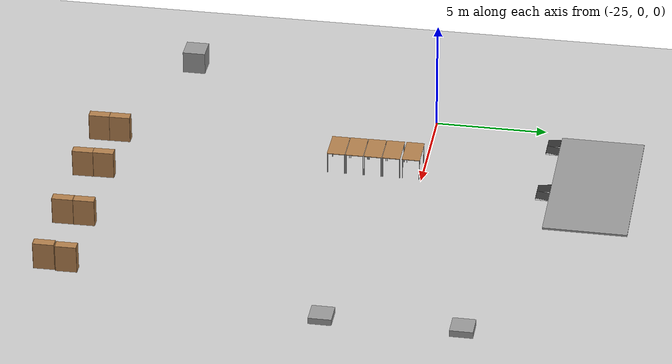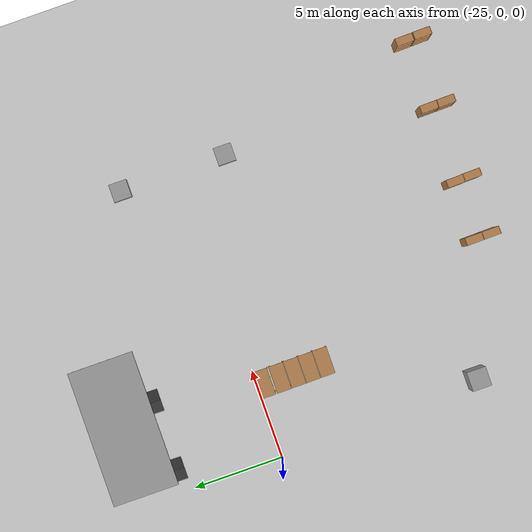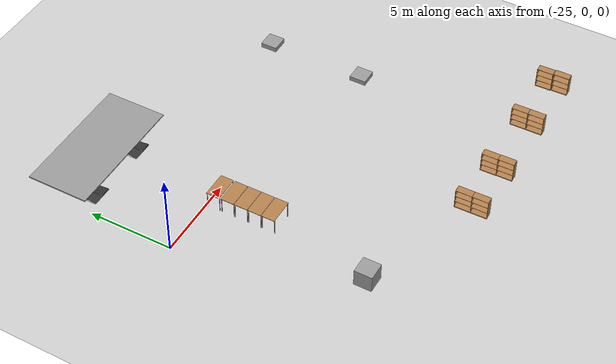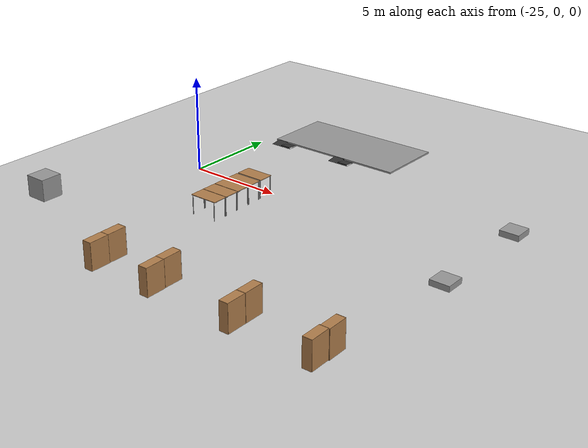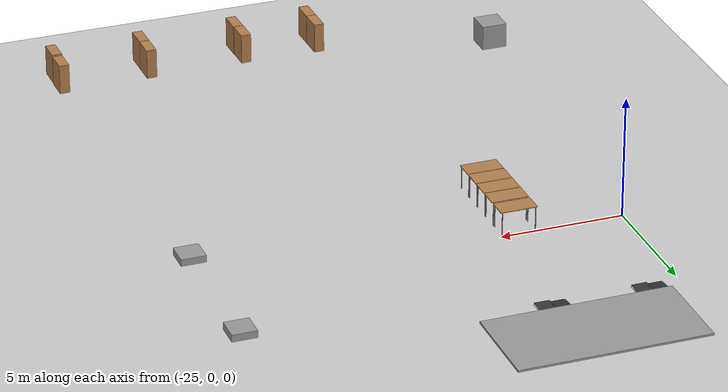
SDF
<sdf version="1.6">
 <world name="default">
  <model name="ground_plane">
   <static>1</static>
   <link name="link">
    <collision name="collision">
     <geometry><plane><normal>0 0 1</normal><size>100 100</size></plane></geometry>
     <surface><friction><ode><mu>100</mu><mu2>50</mu2></ode></friction></surface>
    </collision>
    <visual name="visual">
     <cast_shadows>0</cast_shadows>
     <geometry><plane><normal>0 0 1</normal><size>100 100</size></plane></geometry>
     <material>
      <script><uri>file://media/materials/scripts/gazebo.material</uri><name>Gazebo/Grey</name></script>
     </material>
    </visual>
   </link>
  </model>
  <model name="unit_box">
   <pose>-8.43299 3.46662 0.150675 0 -0 0</pose>
   <link name="link">
    <inertial>
     <mass>1</mass>
     <inertia>
      <ixx>0.166667</ixx>
      <ixy>0</ixy>
      <ixz>0</ixz>
      <iyy>0.166667</iyy>
      <iyz>0</iyz>
      <izz>0.166667</izz>
     </inertia>
    </inertial>
    <collision name="collision"><geometry><box><size>1 1 0.30135</size></box></geometry></collision>
    <visual name="visual">
     <geometry><box><size>1 1 0.30135</size></box></geometry>
     <material>
      <script><name>Gazebo/Grey</name><uri>file://media/materials/scripts/gazebo.material</uri></script>
     </material>
    </visual>
   </link>
  </model>
  <model name="unit_box_0">
   <pose>-8.43373 -2.51764 0.14306 0 -0 0</pose>
   <link name="link">
    <inertial>
     <mass>1</mass>
     <inertia>
      <ixx>0.166667</ixx>
      <ixy>0</ixy>
      <ixz>0</ixz>
      <iyy>0.166667</iyy>
      <iyz>0</iyz>
      <izz>0.166667</izz>
     </inertia>
    </inertial>
    <collision name="collision"><geometry><box><size>1 0.999997 0.28612</size></box></geometry></collision>
    <visual name="visual">
     <geometry><box><size>1 0.999997 0.28612</size></box></geometry>
     <material>
      <script><name>Gazebo/Grey</name><uri>file://media/materials/scripts/gazebo.material</uri></script>
     </material>
    </visual>
    <enable_wind>1</enable_wind>
   </link>
   <enable_wind>1</enable_wind>
  </model>
  <model name="table_20">
   <static>1</static>
   <link name="link">
    <collision name="surface">
     <pose>0 0 1 0 -0 0</pose>
     <geometry><box><size>1.5 0.8 0.03</size></box></geometry>
     <surface><friction><ode><mu>0.6</mu><mu2>0.6</mu2></ode></friction></surface>
    </collision>
    <visual name="visual1">
     <pose>0 0 1 0 -0 0</pose>
     <geometry><box><size>1.5 0.8 0.03</size></box></geometry>
     <material>
      <script><uri>file://media/materials/scripts/gazebo.material</uri><name>Gazebo/Wood</name></script>
     </material>
    </visual>
    <collision name="front_left_leg">
     <pose>0.68 0.38 0.5 0 -0 0</pose>
     <geometry><cylinder><radius>0.02</radius><length>1</length></cylinder></geometry>
    </collision>
    <visual name="front_left_leg">
     <pose>0.68 0.38 0.5 0 -0 0</pose>
     <geometry><cylinder><radius>0.02</radius><length>1</length></cylinder></geometry>
     <material>
      <script><uri>file://media/materials/scripts/gazebo.material</uri><name>Gazebo/Grey</name></script>
     </material>
    </visual>
    <collision name="front_right_leg">
     <pose>0.68 -0.38 0.5 0 -0 0</pose>
     <geometry><cylinder><radius>0.02</radius><length>1</length></cylinder></geometry>
    </collision>
    <visual name="front_right_leg">
     <pose>0.68 -0.38 0.5 0 -0 0</pose>
     <geometry><cylinder><radius>0.02</radius><length>1</length></cylinder></geometry>
     <material>
      <script><uri>file://media/materials/scripts/gazebo.material</uri><name>Gazebo/Grey</name></script>
     </material>
    </visual>
    <collision name="back_right_leg">
     <pose>-0.68 -0.38 0.5 0 -0 0</pose>
     <geometry><cylinder><radius>0.02</radius><length>1</length></cylinder></geometry>
    </collision>
    <visual name="back_right_leg">
     <pose>-0.68 -0.38 0.5 0 -0 0</pose>
     <geometry><cylinder><radius>0.02</radius><length>1</length></cylinder></geometry>
     <material>
      <script><uri>file://media/materials/scripts/gazebo.material</uri><name>Gazebo/Grey</name></script>
     </material>
    </visual>
    <collision name="back_left_leg">
     <pose>-0.68 0.38 0.5 0 -0 0</pose>
     <geometry><cylinder><radius>0.02</radius><length>1</length></cylinder></geometry>
    </collision>
    <visual name="back_left_leg">
     <pose>-0.68 0.38 0.5 0 -0 0</pose>
     <geometry><cylinder><radius>0.02</radius><length>1</length></cylinder></geometry>
     <material>
      <script><uri>file://media/materials/scripts/gazebo.material</uri><name>Gazebo/Grey</name></script>
     </material>
    </visual>
   </link>
   <pose>-20.7569 -0.463939 0 0 -0 0</pose>
  </model>
  <model name="table_21">
   <static>1</static>
   <link name="link">
    <collision name="surface">
     <pose>0 0 1 0 -0 0</pose>
     <geometry><box><size>1.5 0.8 0.03</size></box></geometry>
     <surface><friction><ode><mu>0.6</mu><mu2>0.6</mu2></ode></friction></surface>
    </collision>
    <visual name="visual1">
     <pose>0 0 1 0 -0 0</pose>
     <geometry><box><size>1.5 0.8 0.03</size></box></geometry>
     <material>
      <script><uri>file://media/materials/scripts/gazebo.material</uri><name>Gazebo/Wood</name></script>
     </material>
    </visual>
    <collision name="front_left_leg">
     <pose>0.68 0.38 0.5 0 -0 0</pose>
     <geometry><cylinder><radius>0.02</radius><length>1</length></cylinder></geometry>
    </collision>
    <visual name="front_left_leg">
     <pose>0.68 0.38 0.5 0 -0 0</pose>
     <geometry><cylinder><radius>0.02</radius><length>1</length></cylinder></geometry>
     <material>
      <script><uri>file://media/materials/scripts/gazebo.material</uri><name>Gazebo/Grey</name></script>
     </material>
    </visual>
    <collision name="front_right_leg">
     <pose>0.68 -0.38 0.5 0 -0 0</pose>
     <geometry><cylinder><radius>0.02</radius><length>1</length></cylinder></geometry>
    </collision>
    <visual name="front_right_leg">
     <pose>0.68 -0.38 0.5 0 -0 0</pose>
     <geometry><cylinder><radius>0.02</radius><length>1</length></cylinder></geometry>
     <material>
      <script><uri>file://media/materials/scripts/gazebo.material</uri><name>Gazebo/Grey</name></script>
     </material>
    </visual>
    <collision name="back_right_leg">
     <pose>-0.68 -0.38 0.5 0 -0 0</pose>
     <geometry><cylinder><radius>0.02</radius><length>1</length></cylinder></geometry>
    </collision>
    <visual name="back_right_leg">
     <pose>-0.68 -0.38 0.5 0 -0 0</pose>
     <geometry><cylinder><radius>0.02</radius><length>1</length></cylinder></geometry>
     <material>
      <script><uri>file://media/materials/scripts/gazebo.material</uri><name>Gazebo/Grey</name></script>
     </material>
    </visual>
    <collision name="back_left_leg">
     <pose>-0.68 0.38 0.5 0 -0 0</pose>
     <geometry><cylinder><radius>0.02</radius><length>1</length></cylinder></geometry>
    </collision>
    <visual name="back_left_leg">
     <pose>-0.68 0.38 0.5 0 -0 0</pose>
     <geometry><cylinder><radius>0.02</radius><length>1</length></cylinder></geometry>
     <material>
      <script><uri>file://media/materials/scripts/gazebo.material</uri><name>Gazebo/Grey</name></script>
     </material>
    </visual>
   </link>
   <pose>-20.7493 -1.34779 0 0 -0 0</pose>
  </model>
  <model name="table_22">
   <static>1</static>
   <link name="link">
    <collision name="surface">
     <pose>0 0 1 0 -0 0</pose>
     <geometry><box><size>1.5 0.8 0.03</size></box></geometry>
     <surface><friction><ode><mu>0.6</mu><mu2>0.6</mu2></ode></friction></surface>
    </collision>
    <visual name="visual1">
     <pose>0 0 1 0 -0 0</pose>
     <geometry><box><size>1.5 0.8 0.03</size></box></geometry>
     <material>
      <script><uri>file://media/materials/scripts/gazebo.material</uri><name>Gazebo/Wood</name></script>
     </material>
    </visual>
    <collision name="front_left_leg">
     <pose>0.68 0.38 0.5 0 -0 0</pose>
     <geometry><cylinder><radius>0.02</radius><length>1</length></cylinder></geometry>
    </collision>
    <visual name="front_left_leg">
     <pose>0.68 0.38 0.5 0 -0 0</pose>
     <geometry><cylinder><radius>0.02</radius><length>1</length></cylinder></geometry>
     <material>
      <script><uri>file://media/materials/scripts/gazebo.material</uri><name>Gazebo/Grey</name></script>
     </material>
    </visual>
    <collision name="front_right_leg">
     <pose>0.68 -0.38 0.5 0 -0 0</pose>
     <geometry><cylinder><radius>0.02</radius><length>1</length></cylinder></geometry>
    </collision>
    <visual name="front_right_leg">
     <pose>0.68 -0.38 0.5 0 -0 0</pose>
     <geometry><cylinder><radius>0.02</radius><length>1</length></cylinder></geometry>
     <material>
      <script><uri>file://media/materials/scripts/gazebo.material</uri><name>Gazebo/Grey</name></script>
     </material>
    </visual>
    <collision name="back_right_leg">
     <pose>-0.68 -0.38 0.5 0 -0 0</pose>
     <geometry><cylinder><radius>0.02</radius><length>1</length></cylinder></geometry>
    </collision>
    <visual name="back_right_leg">
     <pose>-0.68 -0.38 0.5 0 -0 0</pose>
     <geometry><cylinder><radius>0.02</radius><length>1</length></cylinder></geometry>
     <material>
      <script><uri>file://media/materials/scripts/gazebo.material</uri><name>Gazebo/Grey</name></script>
     </material>
    </visual>
    <collision name="back_left_leg">
     <pose>-0.68 0.38 0.5 0 -0 0</pose>
     <geometry><cylinder><radius>0.02</radius><length>1</length></cylinder></geometry>
    </collision>
    <visual name="back_left_leg">
     <pose>-0.68 0.38 0.5 0 -0 0</pose>
     <geometry><cylinder><radius>0.02</radius><length>1</length></cylinder></geometry>
     <material>
      <script><uri>file://media/materials/scripts/gazebo.material</uri><name>Gazebo/Grey</name></script>
     </material>
    </visual>
   </link>
   <pose>-20.7417 -2.1727 0 0 -0 0</pose>
  </model>
  <model name="table_23">
   <static>1</static>
   <link name="link">
    <collision name="surface">
     <pose>0 0 1 0 -0 0</pose>
     <geometry><box><size>1.5 0.8 0.03</size></box></geometry>
     <surface><friction><ode><mu>0.6</mu><mu2>0.6</mu2></ode></friction></surface>
    </collision>
    <visual name="visual1">
     <pose>0 0 1 0 -0 0</pose>
     <geometry><box><size>1.5 0.8 0.03</size></box></geometry>
     <material>
      <script><uri>file://media/materials/scripts/gazebo.material</uri><name>Gazebo/Wood</name></script>
     </material>
    </visual>
    <collision name="front_left_leg">
     <pose>0.68 0.38 0.5 0 -0 0</pose>
     <geometry><cylinder><radius>0.02</radius><length>1</length></cylinder></geometry>
    </collision>
    <visual name="front_left_leg">
     <pose>0.68 0.38 0.5 0 -0 0</pose>
     <geometry><cylinder><radius>0.02</radius><length>1</length></cylinder></geometry>
     <material>
      <script><uri>file://media/materials/scripts/gazebo.material</uri><name>Gazebo/Grey</name></script>
     </material>
    </visual>
    <collision name="front_right_leg">
     <pose>0.68 -0.38 0.5 0 -0 0</pose>
     <geometry><cylinder><radius>0.02</radius><length>1</length></cylinder></geometry>
    </collision>
    <visual name="front_right_leg">
     <pose>0.68 -0.38 0.5 0 -0 0</pose>
     <geometry><cylinder><radius>0.02</radius><length>1</length></cylinder></geometry>
     <material>
      <script><uri>file://media/materials/scripts/gazebo.material</uri><name>Gazebo/Grey</name></script>
     </material>
    </visual>
    <collision name="back_right_leg">
     <pose>-0.68 -0.38 0.5 0 -0 0</pose>
     <geometry><cylinder><radius>0.02</radius><length>1</length></cylinder></geometry>
    </collision>
    <visual name="back_right_leg">
     <pose>-0.68 -0.38 0.5 0 -0 0</pose>
     <geometry><cylinder><radius>0.02</radius><length>1</length></cylinder></geometry>
     <material>
      <script><uri>file://media/materials/scripts/gazebo.material</uri><name>Gazebo/Grey</name></script>
     </material>
    </visual>
    <collision name="back_left_leg">
     <pose>-0.68 0.38 0.5 0 -0 0</pose>
     <geometry><cylinder><radius>0.02</radius><length>1</length></cylinder></geometry>
    </collision>
    <visual name="back_left_leg">
     <pose>-0.68 0.38 0.5 0 -0 0</pose>
     <geometry><cylinder><radius>0.02</radius><length>1</length></cylinder></geometry>
     <material>
      <script><uri>file://media/materials/scripts/gazebo.material</uri><name>Gazebo/Grey</name></script>
     </material>
    </visual>
   </link>
   <pose>-20.735 -2.99774 0 0 -0 0</pose>
  </model>
  <model name="table_24">
   <static>1</static>
   <link name="link">
    <collision name="surface">
     <pose>0 0 1 0 -0 0</pose>
     <geometry><box><size>1.5 0.8 0.03</size></box></geometry>
     <surface><friction><ode><mu>0.6</mu><mu2>0.6</mu2></ode></friction></surface>
    </collision>
    <visual name="visual1">
     <pose>0 0 1 0 -0 0</pose>
     <geometry><box><size>1.5 0.8 0.03</size></box></geometry>
     <material>
      <script><uri>file://media/materials/scripts/gazebo.material</uri><name>Gazebo/Wood</name></script>
     </material>
    </visual>
    <collision name="front_left_leg">
     <pose>0.68 0.38 0.5 0 -0 0</pose>
     <geometry><cylinder><radius>0.02</radius><length>1</length></cylinder></geometry>
    </collision>
    <visual name="front_left_leg">
     <pose>0.68 0.38 0.5 0 -0 0</pose>
     <geometry><cylinder><radius>0.02</radius><length>1</length></cylinder></geometry>
     <material>
      <script><uri>file://media/materials/scripts/gazebo.material</uri><name>Gazebo/Grey</name></script>
     </material>
    </visual>
    <collision name="front_right_leg">
     <pose>0.68 -0.38 0.5 0 -0 0</pose>
     <geometry><cylinder><radius>0.02</radius><length>1</length></cylinder></geometry>
    </collision>
    <visual name="front_right_leg">
     <pose>0.68 -0.38 0.5 0 -0 0</pose>
     <geometry><cylinder><radius>0.02</radius><length>1</length></cylinder></geometry>
     <material>
      <script><uri>file://media/materials/scripts/gazebo.material</uri><name>Gazebo/Grey</name></script>
     </material>
    </visual>
    <collision name="back_right_leg">
     <pose>-0.68 -0.38 0.5 0 -0 0</pose>
     <geometry><cylinder><radius>0.02</radius><length>1</length></cylinder></geometry>
    </collision>
    <visual name="back_right_leg">
     <pose>-0.68 -0.38 0.5 0 -0 0</pose>
     <geometry><cylinder><radius>0.02</radius><length>1</length></cylinder></geometry>
     <material>
      <script><uri>file://media/materials/scripts/gazebo.material</uri><name>Gazebo/Grey</name></script>
     </material>
    </visual>
    <collision name="back_left_leg">
     <pose>-0.68 0.38 0.5 0 -0 0</pose>
     <geometry><cylinder><radius>0.02</radius><length>1</length></cylinder></geometry>
    </collision>
    <visual name="back_left_leg">
     <pose>-0.68 0.38 0.5 0 -0 0</pose>
     <geometry><cylinder><radius>0.02</radius><length>1</length></cylinder></geometry>
     <material>
      <script><uri>file://media/materials/scripts/gazebo.material</uri><name>Gazebo/Grey</name></script>
     </material>
    </visual>
   </link>
   <pose>-20.7266 -3.8229 0 0 -0 0</pose>
  </model>
  <model name="bookshelf">
   <static>1</static>
   <link name="link">
    <inertial><mass>1</mass></inertial>
    <collision name="back">
     <pose>0 0.005 0.6 0 -0 0</pose>
     <geometry><box><size>0.9 0.01 1.2</size></box></geometry>
    </collision>
    <visual name="visual1">
     <pose>0 0.005 0.6 0 -0 0</pose>
     <geometry><box><size>0.9 0.01 1.2</size></box></geometry>
     <material>
      <script><uri>file://media/materials/scripts/gazebo.material</uri><name>Gazebo/Wood</name></script>
     </material>
    </visual>
    <collision name="left_side">
     <pose>0.45 -0.195 0.6 0 -0 0</pose>
     <geometry><box><size>0.02 0.4 1.2</size></box></geometry>
    </collision>
    <visual name="visual2">
     <pose>0.45 -0.195 0.6 0 -0 0</pose>
     <geometry><box><size>0.02 0.4 1.2</size></box></geometry>
     <material>
      <script><uri>file://media/materials/scripts/gazebo.material</uri><name>Gazebo/Wood</name></script>
     </material>
    </visual>
    <collision name="right_side">
     <pose>-0.45 -0.195 0.6 0 -0 0</pose>
     <geometry><box><size>0.02 0.4 1.2</size></box></geometry>
    </collision>
    <visual name="visual3">
     <pose>-0.45 -0.195 0.6 0 -0 0</pose>
     <geometry><box><size>0.02 0.4 1.2</size></box></geometry>
     <material>
      <script><uri>file://media/materials/scripts/gazebo.material</uri><name>Gazebo/Wood</name></script>
     </material>
    </visual>
    <collision name="bottom">
     <pose>0 -0.195 0.03 0 -0 0</pose>
     <geometry><box><size>0.88 0.4 0.06</size></box></geometry>
    </collision>
    <visual name="visual4">
     <pose>0 -0.195 0.03 0 -0 0</pose>
     <geometry><box><size>0.88 0.4 0.06</size></box></geometry>
     <material>
      <script><uri>file://media/materials/scripts/gazebo.material</uri><name>Gazebo/Wood</name></script>
     </material>
    </visual>
    <collision name="top">
     <pose>0 -0.195 1.19 0 -0 0</pose>
     <geometry><box><size>0.88 0.4 0.02</size></box></geometry>
    </collision>
    <visual name="visual5">
     <pose>0 -0.195 1.19 0 -0 0</pose>
     <geometry><box><size>0.88 0.4 0.02</size></box></geometry>
     <material>
      <script><uri>file://media/materials/scripts/gazebo.material</uri><name>Gazebo/Wood</name></script>
     </material>
    </visual>
    <collision name="low_shelf">
     <pose>0 -0.195 0.43 0 -0 0</pose>
     <geometry><box><size>0.88 0.4 0.02</size></box></geometry>
    </collision>
    <visual name="visual6">
     <pose>0 -0.195 0.43 0 -0 0</pose>
     <geometry><box><size>0.88 0.4 0.02</size></box></geometry>
     <material>
      <script><uri>file://media/materials/scripts/gazebo.material</uri><name>Gazebo/Wood</name></script>
     </material>
    </visual>
    <collision name="high_shelf">
     <pose>0 -0.195 0.8 0 -0 0</pose>
     <geometry><box><size>0.88 0.4 0.02</size></box></geometry>
    </collision>
    <visual name="visual7">
     <pose>0 -0.195 0.8 0 -0 0</pose>
     <geometry><box><size>0.88 0.4 0.02</size></box></geometry>
     <material>
      <script><uri>file://media/materials/scripts/gazebo.material</uri><name>Gazebo/Wood</name></script>
     </material>
    </visual>
    <enable_wind>1</enable_wind>
   </link>
   <pose>-13.8838 -12.9705 2.61718 0 0 -1.55468</pose>
   <enable_wind>1</enable_wind>
  </model>
  <model name="bookshelf_clone">
   <static>1</static>
   <link name="link">
    <inertial><mass>1</mass></inertial>
    <collision name="back">
     <pose>0 0.005 0.6 0 -0 0</pose>
     <geometry><box><size>0.9 0.01 1.2</size></box></geometry>
    </collision>
    <visual name="visual1">
     <pose>0 0.005 0.6 0 -0 0</pose>
     <geometry><box><size>0.9 0.01 1.2</size></box></geometry>
     <material>
      <script><uri>file://media/materials/scripts/gazebo.material</uri><name>Gazebo/Wood</name></script>
     </material>
    </visual>
    <collision name="left_side">
     <pose>0.45 -0.195 0.6 0 -0 0</pose>
     <geometry><box><size>0.02 0.4 1.2</size></box></geometry>
    </collision>
    <visual name="visual2">
     <pose>0.45 -0.195 0.6 0 -0 0</pose>
     <geometry><box><size>0.02 0.4 1.2</size></box></geometry>
     <material>
      <script><uri>file://media/materials/scripts/gazebo.material</uri><name>Gazebo/Wood</name></script>
     </material>
    </visual>
    <collision name="right_side">
     <pose>-0.45 -0.195 0.6 0 -0 0</pose>
     <geometry><box><size>0.02 0.4 1.2</size></box></geometry>
    </collision>
    <visual name="visual3">
     <pose>-0.45 -0.195 0.6 0 -0 0</pose>
     <geometry><box><size>0.02 0.4 1.2</size></box></geometry>
     <material>
      <script><uri>file://media/materials/scripts/gazebo.material</uri><name>Gazebo/Wood</name></script>
     </material>
    </visual>
    <collision name="bottom">
     <pose>0 -0.195 0.03 0 -0 0</pose>
     <geometry><box><size>0.88 0.4 0.06</size></box></geometry>
    </collision>
    <visual name="visual4">
     <pose>0 -0.195 0.03 0 -0 0</pose>
     <geometry><box><size>0.88 0.4 0.06</size></box></geometry>
     <material>
      <script><uri>file://media/materials/scripts/gazebo.material</uri><name>Gazebo/Wood</name></script>
     </material>
    </visual>
    <collision name="top">
     <pose>0 -0.195 1.19 0 -0 0</pose>
     <geometry><box><size>0.88 0.4 0.02</size></box></geometry>
    </collision>
    <visual name="visual5">
     <pose>0 -0.195 1.19 0 -0 0</pose>
     <geometry><box><size>0.88 0.4 0.02</size></box></geometry>
     <material>
      <script><uri>file://media/materials/scripts/gazebo.material</uri><name>Gazebo/Wood</name></script>
     </material>
    </visual>
    <collision name="low_shelf">
     <pose>0 -0.195 0.43 0 -0 0</pose>
     <geometry><box><size>0.88 0.4 0.02</size></box></geometry>
    </collision>
    <visual name="visual6">
     <pose>0 -0.195 0.43 0 -0 0</pose>
     <geometry><box><size>0.88 0.4 0.02</size></box></geometry>
     <material>
      <script><uri>file://media/materials/scripts/gazebo.material</uri><name>Gazebo/Wood</name></script>
     </material>
    </visual>
    <collision name="high_shelf">
     <pose>0 -0.195 0.8 0 -0 0</pose>
     <geometry><box><size>0.88 0.4 0.02</size></box></geometry>
    </collision>
    <visual name="visual7">
     <pose>0 -0.195 0.8 0 -0 0</pose>
     <geometry><box><size>0.88 0.4 0.02</size></box></geometry>
     <material>
      <script><uri>file://media/materials/scripts/gazebo.material</uri><name>Gazebo/Wood</name></script>
     </material>
    </visual>
    <enable_wind>1</enable_wind>
   </link>
   <pose>-13.8537 -13.8644 2.61718 0 0 -1.55468</pose>
   <enable_wind>1</enable_wind>
  </model>
  <model name="bookshelf_clone_clone_clone_3">
   <static>1</static>
   <link name="link">
    <inertial><mass>1</mass></inertial>
    <collision name="back">
     <pose>0 0.005 0.6 0 -0 0</pose>
     <geometry><box><size>0.9 0.01 1.2</size></box></geometry>
    </collision>
    <visual name="visual1">
     <pose>0 0.005 0.6 0 -0 0</pose>
     <geometry><box><size>0.9 0.01 1.2</size></box></geometry>
     <material>
      <script><uri>file://media/materials/scripts/gazebo.material</uri><name>Gazebo/Wood</name></script>
     </material>
    </visual>
    <collision name="left_side">
     <pose>0.45 -0.195 0.6 0 -0 0</pose>
     <geometry><box><size>0.02 0.4 1.2</size></box></geometry>
    </collision>
    <visual name="visual2">
     <pose>0.45 -0.195 0.6 0 -0 0</pose>
     <geometry><box><size>0.02 0.4 1.2</size></box></geometry>
     <material>
      <script><uri>file://media/materials/scripts/gazebo.material</uri><name>Gazebo/Wood</name></script>
     </material>
    </visual>
    <collision name="right_side">
     <pose>-0.45 -0.195 0.6 0 -0 0</pose>
     <geometry><box><size>0.02 0.4 1.2</size></box></geometry>
    </collision>
    <visual name="visual3">
     <pose>-0.45 -0.195 0.6 0 -0 0</pose>
     <geometry><box><size>0.02 0.4 1.2</size></box></geometry>
     <material>
      <script><uri>file://media/materials/scripts/gazebo.material</uri><name>Gazebo/Wood</name></script>
     </material>
    </visual>
    <collision name="bottom">
     <pose>0 -0.195 0.03 0 -0 0</pose>
     <geometry><box><size>0.88 0.4 0.06</size></box></geometry>
    </collision>
    <visual name="visual4">
     <pose>0 -0.195 0.03 0 -0 0</pose>
     <geometry><box><size>0.88 0.4 0.06</size></box></geometry>
     <material>
      <script><uri>file://media/materials/scripts/gazebo.material</uri><name>Gazebo/Wood</name></script>
     </material>
    </visual>
    <collision name="top">
     <pose>0 -0.195 1.19 0 -0 0</pose>
     <geometry><box><size>0.88 0.4 0.02</size></box></geometry>
    </collision>
    <visual name="visual5">
     <pose>0 -0.195 1.19 0 -0 0</pose>
     <geometry><box><size>0.88 0.4 0.02</size></box></geometry>
     <material>
      <script><uri>file://media/materials/scripts/gazebo.material</uri><name>Gazebo/Wood</name></script>
     </material>
    </visual>
    <collision name="low_shelf">
     <pose>0 -0.195 0.43 0 -0 0</pose>
     <geometry><box><size>0.88 0.4 0.02</size></box></geometry>
    </collision>
    <visual name="visual6">
     <pose>0 -0.195 0.43 0 -0 0</pose>
     <geometry><box><size>0.88 0.4 0.02</size></box></geometry>
     <material>
      <script><uri>file://media/materials/scripts/gazebo.material</uri><name>Gazebo/Wood</name></script>
     </material>
    </visual>
    <collision name="high_shelf">
     <pose>0 -0.195 0.8 0 -0 0</pose>
     <geometry><box><size>0.88 0.4 0.02</size></box></geometry>
    </collision>
    <visual name="visual7">
     <pose>0 -0.195 0.8 0 -0 0</pose>
     <geometry><box><size>0.88 0.4 0.02</size></box></geometry>
     <material>
      <script><uri>file://media/materials/scripts/gazebo.material</uri><name>Gazebo/Wood</name></script>
     </material>
    </visual>
    <enable_wind>1</enable_wind>
   </link>
   <pose>-9.95464 -12.9527 2.61718 0 0 -1.55468</pose>
   <enable_wind>1</enable_wind>
  </model>
  <model name="bookshelf_clone_clone_clone_4">
   <static>1</static>
   <link name="link">
    <inertial><mass>1</mass></inertial>
    <collision name="back">
     <pose>0 0.005 0.6 0 -0 0</pose>
     <geometry><box><size>0.9 0.01 1.2</size></box></geometry>
    </collision>
    <visual name="visual1">
     <pose>0 0.005 0.6 0 -0 0</pose>
     <geometry><box><size>0.9 0.01 1.2</size></box></geometry>
     <material>
      <script><uri>file://media/materials/scripts/gazebo.material</uri><name>Gazebo/Wood</name></script>
     </material>
    </visual>
    <collision name="left_side">
     <pose>0.45 -0.195 0.6 0 -0 0</pose>
     <geometry><box><size>0.02 0.4 1.2</size></box></geometry>
    </collision>
    <visual name="visual2">
     <pose>0.45 -0.195 0.6 0 -0 0</pose>
     <geometry><box><size>0.02 0.4 1.2</size></box></geometry>
     <material>
      <script><uri>file://media/materials/scripts/gazebo.material</uri><name>Gazebo/Wood</name></script>
     </material>
    </visual>
    <collision name="right_side">
     <pose>-0.45 -0.195 0.6 0 -0 0</pose>
     <geometry><box><size>0.02 0.4 1.2</size></box></geometry>
    </collision>
    <visual name="visual3">
     <pose>-0.45 -0.195 0.6 0 -0 0</pose>
     <geometry><box><size>0.02 0.4 1.2</size></box></geometry>
     <material>
      <script><uri>file://media/materials/scripts/gazebo.material</uri><name>Gazebo/Wood</name></script>
     </material>
    </visual>
    <collision name="bottom">
     <pose>0 -0.195 0.03 0 -0 0</pose>
     <geometry><box><size>0.88 0.4 0.06</size></box></geometry>
    </collision>
    <visual name="visual4">
     <pose>0 -0.195 0.03 0 -0 0</pose>
     <geometry><box><size>0.88 0.4 0.06</size></box></geometry>
     <material>
      <script><uri>file://media/materials/scripts/gazebo.material</uri><name>Gazebo/Wood</name></script>
     </material>
    </visual>
    <collision name="top">
     <pose>0 -0.195 1.19 0 -0 0</pose>
     <geometry><box><size>0.88 0.4 0.02</size></box></geometry>
    </collision>
    <visual name="visual5">
     <pose>0 -0.195 1.19 0 -0 0</pose>
     <geometry><box><size>0.88 0.4 0.02</size></box></geometry>
     <material>
      <script><uri>file://media/materials/scripts/gazebo.material</uri><name>Gazebo/Wood</name></script>
     </material>
    </visual>
    <collision name="low_shelf">
     <pose>0 -0.195 0.43 0 -0 0</pose>
     <geometry><box><size>0.88 0.4 0.02</size></box></geometry>
    </collision>
    <visual name="visual6">
     <pose>0 -0.195 0.43 0 -0 0</pose>
     <geometry><box><size>0.88 0.4 0.02</size></box></geometry>
     <material>
      <script><uri>file://media/materials/scripts/gazebo.material</uri><name>Gazebo/Wood</name></script>
     </material>
    </visual>
    <collision name="high_shelf">
     <pose>0 -0.195 0.8 0 -0 0</pose>
     <geometry><box><size>0.88 0.4 0.02</size></box></geometry>
    </collision>
    <visual name="visual7">
     <pose>0 -0.195 0.8 0 -0 0</pose>
     <geometry><box><size>0.88 0.4 0.02</size></box></geometry>
     <material>
      <script><uri>file://media/materials/scripts/gazebo.material</uri><name>Gazebo/Wood</name></script>
     </material>
    </visual>
    <enable_wind>1</enable_wind>
   </link>
   <pose>-9.94282 -13.8675 2.61718 0 0 -1.55468</pose>
   <enable_wind>1</enable_wind>
  </model>
  <model name="bookshelf_clone_clone_clone_10">
   <static>1</static>
   <link name="link">
    <inertial><mass>1</mass></inertial>
    <collision name="back">
     <pose>0 0.005 0.6 0 -0 0</pose>
     <geometry><box><size>0.9 0.01 1.2</size></box></geometry>
    </collision>
    <visual name="visual1">
     <pose>0 0.005 0.6 0 -0 0</pose>
     <geometry><box><size>0.9 0.01 1.2</size></box></geometry>
     <material>
      <script><uri>file://media/materials/scripts/gazebo.material</uri><name>Gazebo/Wood</name></script>
     </material>
    </visual>
    <collision name="left_side">
     <pose>0.45 -0.195 0.6 0 -0 0</pose>
     <geometry><box><size>0.02 0.4 1.2</size></box></geometry>
    </collision>
    <visual name="visual2">
     <pose>0.45 -0.195 0.6 0 -0 0</pose>
     <geometry><box><size>0.02 0.4 1.2</size></box></geometry>
     <material>
      <script><uri>file://media/materials/scripts/gazebo.material</uri><name>Gazebo/Wood</name></script>
     </material>
    </visual>
    <collision name="right_side">
     <pose>-0.45 -0.195 0.6 0 -0 0</pose>
     <geometry><box><size>0.02 0.4 1.2</size></box></geometry>
    </collision>
    <visual name="visual3">
     <pose>-0.45 -0.195 0.6 0 -0 0</pose>
     <geometry><box><size>0.02 0.4 1.2</size></box></geometry>
     <material>
      <script><uri>file://media/materials/scripts/gazebo.material</uri><name>Gazebo/Wood</name></script>
     </material>
    </visual>
    <collision name="bottom">
     <pose>0 -0.195 0.03 0 -0 0</pose>
     <geometry><box><size>0.88 0.4 0.06</size></box></geometry>
    </collision>
    <visual name="visual4">
     <pose>0 -0.195 0.03 0 -0 0</pose>
     <geometry><box><size>0.88 0.4 0.06</size></box></geometry>
     <material>
      <script><uri>file://media/materials/scripts/gazebo.material</uri><name>Gazebo/Wood</name></script>
     </material>
    </visual>
    <collision name="top">
     <pose>0 -0.195 1.19 0 -0 0</pose>
     <geometry><box><size>0.88 0.4 0.02</size></box></geometry>
    </collision>
    <visual name="visual5">
     <pose>0 -0.195 1.19 0 -0 0</pose>
     <geometry><box><size>0.88 0.4 0.02</size></box></geometry>
     <material>
      <script><uri>file://media/materials/scripts/gazebo.material</uri><name>Gazebo/Wood</name></script>
     </material>
    </visual>
    <collision name="low_shelf">
     <pose>0 -0.195 0.43 0 -0 0</pose>
     <geometry><box><size>0.88 0.4 0.02</size></box></geometry>
    </collision>
    <visual name="visual6">
     <pose>0 -0.195 0.43 0 -0 0</pose>
     <geometry><box><size>0.88 0.4 0.02</size></box></geometry>
     <material>
      <script><uri>file://media/materials/scripts/gazebo.material</uri><name>Gazebo/Wood</name></script>
     </material>
    </visual>
    <collision name="high_shelf">
     <pose>0 -0.195 0.8 0 -0 0</pose>
     <geometry><box><size>0.88 0.4 0.02</size></box></geometry>
    </collision>
    <visual name="visual7">
     <pose>0 -0.195 0.8 0 -0 0</pose>
     <geometry><box><size>0.88 0.4 0.02</size></box></geometry>
     <material>
      <script><uri>file://media/materials/scripts/gazebo.material</uri><name>Gazebo/Wood</name></script>
     </material>
    </visual>
    <enable_wind>1</enable_wind>
   </link>
   <pose>-6.37428 -12.9221 2.57399 0 0 -1.55468</pose>
   <enable_wind>1</enable_wind>
  </model>
  <model name="bookshelf_clone_clone_clone_11">
   <static>1</static>
   <link name="link">
    <inertial><mass>1</mass></inertial>
    <collision name="back">
     <pose>0 0.005 0.6 0 -0 0</pose>
     <geometry><box><size>0.9 0.01 1.2</size></box></geometry>
    </collision>
    <visual name="visual1">
     <pose>0 0.005 0.6 0 -0 0</pose>
     <geometry><box><size>0.9 0.01 1.2</size></box></geometry>
     <material>
      <script><uri>file://media/materials/scripts/gazebo.material</uri><name>Gazebo/Wood</name></script>
     </material>
    </visual>
    <collision name="left_side">
     <pose>0.45 -0.195 0.6 0 -0 0</pose>
     <geometry><box><size>0.02 0.4 1.2</size></box></geometry>
    </collision>
    <visual name="visual2">
     <pose>0.45 -0.195 0.6 0 -0 0</pose>
     <geometry><box><size>0.02 0.4 1.2</size></box></geometry>
     <material>
      <script><uri>file://media/materials/scripts/gazebo.material</uri><name>Gazebo/Wood</name></script>
     </material>
    </visual>
    <collision name="right_side">
     <pose>-0.45 -0.195 0.6 0 -0 0</pose>
     <geometry><box><size>0.02 0.4 1.2</size></box></geometry>
    </collision>
    <visual name="visual3">
     <pose>-0.45 -0.195 0.6 0 -0 0</pose>
     <geometry><box><size>0.02 0.4 1.2</size></box></geometry>
     <material>
      <script><uri>file://media/materials/scripts/gazebo.material</uri><name>Gazebo/Wood</name></script>
     </material>
    </visual>
    <collision name="bottom">
     <pose>0 -0.195 0.03 0 -0 0</pose>
     <geometry><box><size>0.88 0.4 0.06</size></box></geometry>
    </collision>
    <visual name="visual4">
     <pose>0 -0.195 0.03 0 -0 0</pose>
     <geometry><box><size>0.88 0.4 0.06</size></box></geometry>
     <material>
      <script><uri>file://media/materials/scripts/gazebo.material</uri><name>Gazebo/Wood</name></script>
     </material>
    </visual>
    <collision name="top">
     <pose>0 -0.195 1.19 0 -0 0</pose>
     <geometry><box><size>0.88 0.4 0.02</size></box></geometry>
    </collision>
    <visual name="visual5">
     <pose>0 -0.195 1.19 0 -0 0</pose>
     <geometry><box><size>0.88 0.4 0.02</size></box></geometry>
     <material>
      <script><uri>file://media/materials/scripts/gazebo.material</uri><name>Gazebo/Wood</name></script>
     </material>
    </visual>
    <collision name="low_shelf">
     <pose>0 -0.195 0.43 0 -0 0</pose>
     <geometry><box><size>0.88 0.4 0.02</size></box></geometry>
    </collision>
    <visual name="visual6">
     <pose>0 -0.195 0.43 0 -0 0</pose>
     <geometry><box><size>0.88 0.4 0.02</size></box></geometry>
     <material>
      <script><uri>file://media/materials/scripts/gazebo.material</uri><name>Gazebo/Wood</name></script>
     </material>
    </visual>
    <collision name="high_shelf">
     <pose>0 -0.195 0.8 0 -0 0</pose>
     <geometry><box><size>0.88 0.4 0.02</size></box></geometry>
    </collision>
    <visual name="visual7">
     <pose>0 -0.195 0.8 0 -0 0</pose>
     <geometry><box><size>0.88 0.4 0.02</size></box></geometry>
     <material>
      <script><uri>file://media/materials/scripts/gazebo.material</uri><name>Gazebo/Wood</name></script>
     </material>
    </visual>
    <enable_wind>1</enable_wind>
   </link>
   <pose>-6.36139 -13.8602 2.61718 0 0 -1.55468</pose>
   <enable_wind>1</enable_wind>
  </model>
  <model name="bookshelf_clone_0">
   <static>1</static>
   <link name="link">
    <inertial><mass>1</mass></inertial>
    <collision name="back">
     <pose>0 0.005 0.6 0 -0 0</pose>
     <geometry><box><size>0.9 0.01 1.2</size></box></geometry>
    </collision>
    <visual name="visual1">
     <pose>0 0.005 0.6 0 -0 0</pose>
     <geometry><box><size>0.9 0.01 1.2</size></box></geometry>
     <material>
      <script><uri>file://media/materials/scripts/gazebo.material</uri><name>Gazebo/Wood</name></script>
     </material>
    </visual>
    <collision name="left_side">
     <pose>0.45 -0.195 0.6 0 -0 0</pose>
     <geometry><box><size>0.02 0.4 1.2</size></box></geometry>
    </collision>
    <visual name="visual2">
     <pose>0.45 -0.195 0.6 0 -0 0</pose>
     <geometry><box><size>0.02 0.4 1.2</size></box></geometry>
     <material>
      <script><uri>file://media/materials/scripts/gazebo.material</uri><name>Gazebo/Wood</name></script>
     </material>
    </visual>
    <collision name="right_side">
     <pose>-0.45 -0.195 0.6 0 -0 0</pose>
     <geometry><box><size>0.02 0.4 1.2</size></box></geometry>
    </collision>
    <visual name="visual3">
     <pose>-0.45 -0.195 0.6 0 -0 0</pose>
     <geometry><box><size>0.02 0.4 1.2</size></box></geometry>
     <material>
      <script><uri>file://media/materials/scripts/gazebo.material</uri><name>Gazebo/Wood</name></script>
     </material>
    </visual>
    <collision name="bottom">
     <pose>0 -0.195 0.03 0 -0 0</pose>
     <geometry><box><size>0.88 0.4 0.06</size></box></geometry>
    </collision>
    <visual name="visual4">
     <pose>0 -0.195 0.03 0 -0 0</pose>
     <geometry><box><size>0.88 0.4 0.06</size></box></geometry>
     <material>
      <script><uri>file://media/materials/scripts/gazebo.material</uri><name>Gazebo/Wood</name></script>
     </material>
    </visual>
    <collision name="top">
     <pose>0 -0.195 1.19 0 -0 0</pose>
     <geometry><box><size>0.88 0.4 0.02</size></box></geometry>
    </collision>
    <visual name="visual5">
     <pose>0 -0.195 1.19 0 -0 0</pose>
     <geometry><box><size>0.88 0.4 0.02</size></box></geometry>
     <material>
      <script><uri>file://media/materials/scripts/gazebo.material</uri><name>Gazebo/Wood</name></script>
     </material>
    </visual>
    <collision name="low_shelf">
     <pose>0 -0.195 0.43 0 -0 0</pose>
     <geometry><box><size>0.88 0.4 0.02</size></box></geometry>
    </collision>
    <visual name="visual6">
     <pose>0 -0.195 0.43 0 -0 0</pose>
     <geometry><box><size>0.88 0.4 0.02</size></box></geometry>
     <material>
      <script><uri>file://media/materials/scripts/gazebo.material</uri><name>Gazebo/Wood</name></script>
     </material>
    </visual>
    <collision name="high_shelf">
     <pose>0 -0.195 0.8 0 -0 0</pose>
     <geometry><box><size>0.88 0.4 0.02</size></box></geometry>
    </collision>
    <visual name="visual7">
     <pose>0 -0.195 0.8 0 -0 0</pose>
     <geometry><box><size>0.88 0.4 0.02</size></box></geometry>
     <material>
      <script><uri>file://media/materials/scripts/gazebo.material</uri><name>Gazebo/Wood</name></script>
     </material>
    </visual>
    <enable_wind>1</enable_wind>
   </link>
   <pose>-16.9303 -12.9015 2.61718 0 0 -1.55468</pose>
   <enable_wind>1</enable_wind>
  </model>
  <model name="bookshelf_clone_1">
   <static>1</static>
   <link name="link">
    <inertial><mass>1</mass></inertial>
    <collision name="back">
     <pose>0 0.005 0.6 0 -0 0</pose>
     <geometry><box><size>0.9 0.01 1.2</size></box></geometry>
    </collision>
    <visual name="visual1">
     <pose>0 0.005 0.6 0 -0 0</pose>
     <geometry><box><size>0.9 0.01 1.2</size></box></geometry>
     <material>
      <script><uri>file://media/materials/scripts/gazebo.material</uri><name>Gazebo/Wood</name></script>
     </material>
    </visual>
    <collision name="left_side">
     <pose>0.45 -0.195 0.6 0 -0 0</pose>
     <geometry><box><size>0.02 0.4 1.2</size></box></geometry>
    </collision>
    <visual name="visual2">
     <pose>0.45 -0.195 0.6 0 -0 0</pose>
     <geometry><box><size>0.02 0.4 1.2</size></box></geometry>
     <material>
      <script><uri>file://media/materials/scripts/gazebo.material</uri><name>Gazebo/Wood</name></script>
     </material>
    </visual>
    <collision name="right_side">
     <pose>-0.45 -0.195 0.6 0 -0 0</pose>
     <geometry><box><size>0.02 0.4 1.2</size></box></geometry>
    </collision>
    <visual name="visual3">
     <pose>-0.45 -0.195 0.6 0 -0 0</pose>
     <geometry><box><size>0.02 0.4 1.2</size></box></geometry>
     <material>
      <script><uri>file://media/materials/scripts/gazebo.material</uri><name>Gazebo/Wood</name></script>
     </material>
    </visual>
    <collision name="bottom">
     <pose>0 -0.195 0.03 0 -0 0</pose>
     <geometry><box><size>0.88 0.4 0.06</size></box></geometry>
    </collision>
    <visual name="visual4">
     <pose>0 -0.195 0.03 0 -0 0</pose>
     <geometry><box><size>0.88 0.4 0.06</size></box></geometry>
     <material>
      <script><uri>file://media/materials/scripts/gazebo.material</uri><name>Gazebo/Wood</name></script>
     </material>
    </visual>
    <collision name="top">
     <pose>0 -0.195 1.19 0 -0 0</pose>
     <geometry><box><size>0.88 0.4 0.02</size></box></geometry>
    </collision>
    <visual name="visual5">
     <pose>0 -0.195 1.19 0 -0 0</pose>
     <geometry><box><size>0.88 0.4 0.02</size></box></geometry>
     <material>
      <script><uri>file://media/materials/scripts/gazebo.material</uri><name>Gazebo/Wood</name></script>
     </material>
    </visual>
    <collision name="low_shelf">
     <pose>0 -0.195 0.43 0 -0 0</pose>
     <geometry><box><size>0.88 0.4 0.02</size></box></geometry>
    </collision>
    <visual name="visual6">
     <pose>0 -0.195 0.43 0 -0 0</pose>
     <geometry><box><size>0.88 0.4 0.02</size></box></geometry>
     <material>
      <script><uri>file://media/materials/scripts/gazebo.material</uri><name>Gazebo/Wood</name></script>
     </material>
    </visual>
    <collision name="high_shelf">
     <pose>0 -0.195 0.8 0 -0 0</pose>
     <geometry><box><size>0.88 0.4 0.02</size></box></geometry>
    </collision>
    <visual name="visual7">
     <pose>0 -0.195 0.8 0 -0 0</pose>
     <geometry><box><size>0.88 0.4 0.02</size></box></geometry>
     <material>
      <script><uri>file://media/materials/scripts/gazebo.material</uri><name>Gazebo/Wood</name></script>
     </material>
    </visual>
    <enable_wind>1</enable_wind>
   </link>
   <pose>-16.9133 -13.8044 2.61718 0 0 -1.55468</pose>
   <enable_wind>1</enable_wind>
  </model>
  <model name="frc2016_ramparts">
   <static>1</static>
   <link name="link">
    <visual name="platform">
     <pose>0 0 0.06967 0 -0 0</pose>
     <geometry><box><size>1.27 0.5969 0.003175</size></box></geometry>
    </visual>
    <collision name="platform">
     <pose>0 0 0.06967 0 -0 0</pose>
     <geometry><box><size>1.27 0.5969 0.003175</size></box></geometry>
    </collision>
    <visual name="ramp1">
     <pose>0.30472 0.00588 0.1109 -0.13 0 0</pose>
     <geometry><box><size>0.60957 0.588891 0.00462</size></box></geometry>
     <material><ambient>0.2 0.2 0.2 1</ambient><diffuse>0.2 0.2 0.2 1</diffuse></material>
    </visual>
    <collision name="ramp1">
     <pose>0.30472 0.00588 0.1109 -0.13 0 0</pose>
     <geometry><box><size>0.60957 0.588891 0.00462</size></box></geometry>
    </collision>
    <visual name="up1">
     <pose>0.30472 -0.28806 0.11072 0 -0 0</pose>
     <geometry><box><size>0.60957 0.00462 0.07872</size></box></geometry>
     <material><ambient>0.2 0.2 0.2 1</ambient><diffuse>0.2 0.2 0.2 1</diffuse></material>
    </visual>
    <collision name="up1">
     <pose>0.30472 -0.28806 0.11072 0 -0 0</pose>
     <geometry><box><size>0.60957 0.00462 0.07872</size></box></geometry>
    </collision>
    <visual name="ramp2">
     <pose>-0.30472 -0.00619 0.1109 0.13 -0 0</pose>
     <geometry><box><size>0.60957 0.588891 0.00462</size></box></geometry>
     <material><ambient>0.2 0.2 0.2 1</ambient><diffuse>0.2 0.2 0.2 1</diffuse></material>
    </visual>
    <collision name="ramp2">
     <pose>-0.30472 -0.00619 0.1109 0.13 -0 0</pose>
     <geometry><box><size>0.60957 0.588891 0.00462</size></box></geometry>
    </collision>
    <visual name="up2">
     <pose>-0.30472 0.28806 0.11072 0 -0 0</pose>
     <geometry><box><size>0.60957 0.00462 0.07872</size></box></geometry>
     <material><ambient>0.2 0.2 0.2 1</ambient><diffuse>0.2 0.2 0.2 1</diffuse></material>
    </visual>
    <collision name="up2">
     <pose>-0.30472 0.28806 0.11072 0 -0 0</pose>
     <geometry><box><size>0.60957 0.00462 0.07872</size></box></geometry>
    </collision>
   </link>
   <pose>-23.7177 5.49091 -0.063445 0 -0 0.000677</pose>
  </model>
  <model name="unit_box_3">
   <pose>-20.6606 7.64809 0.048045 -0.003182 0 0</pose>
   <link name="link">
    <inertial>
     <mass>1</mass>
     <inertia>
      <ixx>0.166667</ixx>
      <ixy>0</ixy>
      <ixz>0</ixz>
      <iyy>0.166667</iyy>
      <iyz>0</iyz>
      <izz>0.166667</izz>
     </inertia>
    </inertial>
    <collision name="collision"><geometry><box><size>7.66446 3.7176 0.084262</size></box></geometry></collision>
    <visual name="visual">
     <geometry><box><size>7.66446 3.7176 0.084262</size></box></geometry>
     <material>
      <script><name>Gazebo/Grey</name><uri>file://media/materials/scripts/gazebo.material</uri></script>
     </material>
    </visual>
   </link>
  </model>
  <model name="unit_box_4_clone">
   <pose>-23.8374 -10.8549 3.1 0 -0 3e-06</pose>
   <link name="link">
    <inertial>
     <mass>1</mass>
     <inertia>
      <ixx>0.166667</ixx>
      <ixy>0</ixy>
      <ixz>0</ixz>
      <iyy>0.166667</iyy>
      <iyz>0</iyz>
      <izz>0.166667</izz>
     </inertia>
    </inertial>
    <collision name="collision"><geometry><box><size>1 1 1</size></box></geometry></collision>
    <visual name="visual">
     <geometry><box><size>1 1 1</size></box></geometry>
     <material>
      <script><name>Gazebo/Grey</name><uri>file://media/materials/scripts/gazebo.material</uri></script>
     </material>
    </visual>
   </link>
  </model>
  <model name="frc2016_ramparts_clone">
   <static>1</static>
   <link name="link">
    <visual name="platform">
     <pose>0 0 0.06967 0 -0 0</pose>
     <geometry><box><size>1.27 0.5969 0.003175</size></box></geometry>
    </visual>
    <collision name="platform">
     <pose>0 0 0.06967 0 -0 0</pose>
     <geometry><box><size>1.27 0.5969 0.003175</size></box></geometry>
    </collision>
    <visual name="ramp1">
     <pose>0.30472 0.00588 0.1109 -0.13 0 0</pose>
     <geometry><box><size>0.60957 0.588891 0.00462</size></box></geometry>
     <material><ambient>0.2 0.2 0.2 1</ambient><diffuse>0.2 0.2 0.2 1</diffuse></material>
    </visual>
    <collision name="ramp1">
     <pose>0.30472 0.00588 0.1109 -0.13 0 0</pose>
     <geometry><box><size>0.60957 0.588891 0.00462</size></box></geometry>
    </collision>
    <visual name="up1">
     <pose>0.30472 -0.28806 0.11072 0 -0 0</pose>
     <geometry><box><size>0.60957 0.00462 0.07872</size></box></geometry>
     <material><ambient>0.2 0.2 0.2 1</ambient><diffuse>0.2 0.2 0.2 1</diffuse></material>
    </visual>
    <collision name="up1">
     <pose>0.30472 -0.28806 0.11072 0 -0 0</pose>
     <geometry><box><size>0.60957 0.00462 0.07872</size></box></geometry>
    </collision>
    <visual name="ramp2">
     <pose>-0.30472 -0.00619 0.1109 0.13 -0 0</pose>
     <geometry><box><size>0.60957 0.588891 0.00462</size></box></geometry>
     <material><ambient>0.2 0.2 0.2 1</ambient><diffuse>0.2 0.2 0.2 1</diffuse></material>
    </visual>
    <collision name="ramp2">
     <pose>-0.30472 -0.00619 0.1109 0.13 -0 0</pose>
     <geometry><box><size>0.60957 0.588891 0.00462</size></box></geometry>
    </collision>
    <visual name="up2">
     <pose>-0.30472 0.28806 0.11072 0 -0 0</pose>
     <geometry><box><size>0.60957 0.00462 0.07872</size></box></geometry>
     <material><ambient>0.2 0.2 0.2 1</ambient><diffuse>0.2 0.2 0.2 1</diffuse></material>
    </visual>
    <collision name="up2">
     <pose>-0.30472 0.28806 0.11072 0 -0 0</pose>
     <geometry><box><size>0.60957 0.00462 0.07872</size></box></geometry>
    </collision>
   </link>
   <pose>-19.8224 5.49254 -0.063445 0 -0 0.000677</pose>
  </model>
 </world>
</sdf>
